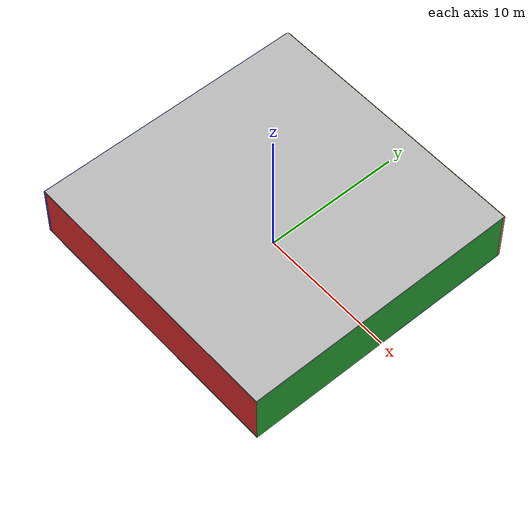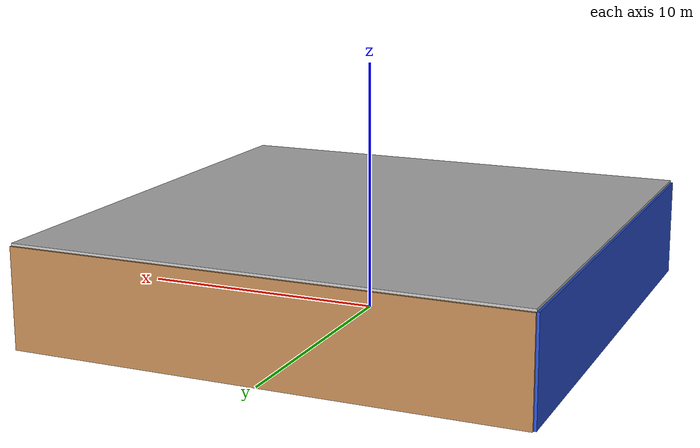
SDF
<sdf version="1.4">
 <world name="default">
  <physics type="ode">
   <max_step_size>0.001</max_step_size>
   <real_time_factor>1</real_time_factor>
   <real_time_update_rate>1000</real_time_update_rate>
   <gravity>0 0 -9.8</gravity>
  </physics>
  <scene><ambient>0.4 0.4 0.4 1</ambient><background>0.7 0.7 0.7 1</background><shadows>1</shadows></scene>
  <model name="Surrounding">
   <static>1</static>
   <link name="Ceiling">
    <collision name="Ceiling_Collision"><geometry><box><size>20 20 0.1</size></box></geometry></collision>
    <visual name="Ceiling_Visual">
     <geometry><box><size>20 20 0.1</size></box></geometry>
     <material>
      <script><uri>file://media/materials/scripts/gazebo.material</uri><name>Gazebo/Pioneer2Body</name></script>
     </material>
    </visual>
    <pose>0 0 4.05 0 0 0</pose>
   </link>
   <link name="Wall_South">
    <collision name="Wall_South_Collision">
     <geometry><box><size>20 0 4</size></box></geometry>
     <pose>0 0 2 0 -0 0</pose>
    </collision>
    <visual name="Wall_South_Visual">
     <pose>0 0 2 0 -0 0</pose>
     <geometry><box><size>20 0 4</size></box></geometry>
     <material>
      <script><uri>file://media/materials/scripts/gazebo.material</uri><name>Gazebo/RedBright</name></script>
     </material>
    </visual>
    <velocity_decay><linear>0</linear><angular>0</angular></velocity_decay>
    <pose>0 -10 0 0 -0 0</pose>
   </link>
   <link name="Wall_East">
    <collision name="Wall_21_Collision">
     <geometry><box><size>20 0 4</size></box></geometry>
     <pose>0 0 2 0 -0 0</pose>
    </collision>
    <visual name="Wall_21_Visual">
     <pose>0 0 2 0 -0 0</pose>
     <geometry><box><size>20 0 4</size></box></geometry>
     <material>
      <script><uri>file://media/materials/scripts/gazebo.material</uri><name>Gazebo/Green</name></script>
     </material>
    </visual>
    <velocity_decay><linear>0</linear><angular>0</angular></velocity_decay>
    <pose>10 0 0 0 -0 1.5708</pose>
   </link>
   <link name="Wall_North">
    <collision name="Wall_22_Collision">
     <geometry><box><size>20 0.2 4</size></box></geometry>
     <pose>0 0 2 0 -0 0</pose>
    </collision>
    <visual name="Wall_22_Visual">
     <pose>0 0 2 0 -0 0</pose>
     <geometry><box><size>20 0.2 4</size></box></geometry>
     <material>
      <script><uri>file://media/materials/scripts/gazebo.material</uri><name>Gazebo/WoodPallet</name></script>
     </material>
    </visual>
    <velocity_decay><linear>0</linear><angular>0</angular></velocity_decay>
    <pose>0 10 0 0 -0 0</pose>
   </link>
   <link name="Wall_West">
    <collision name="Wall_23_Collision">
     <geometry><box><size>20 0.2 4</size></box></geometry>
     <pose>0 0 2 0 -0 0</pose>
    </collision>
    <visual name="Wall_23_Visual">
     <pose>0 0 2 0 -0 0</pose>
     <geometry><box><size>20 0.2 4</size></box></geometry>
     <material>
      <script><uri>file://media/materials/scripts/gazebo.material</uri><name>Gazebo/BlueLaser</name></script>
     </material>
    </visual>
    <velocity_decay><linear>0</linear><angular>0</angular></velocity_decay>
    <pose>-10 0 0 0 0 -1.5708</pose>
   </link>
   <link name="Ground_link">
    <collision name="collision">
     <pose>0 0 .05 0 -0 0</pose>
     <geometry><box><size>20 20 0.1</size></box></geometry>
    </collision>
    <visual name="visual">
     <pose>0 0 .05 0 -0 0</pose>
     <geometry><box><size>20 20 0.1</size></box></geometry>
     <material>
      <script>
       <uri>file://media/materials/scripts/gazebo.material</uri>
       <name>Gazebo/TurquoiseGlowOutline</name>
      </script>
     </material>
    </visual>
   </link>
   <static>1</static>
  </model>
  <spherical_coordinates>
   <surface_model>EARTH_WGS84</surface_model>
   <latitude_deg>0</latitude_deg>
   <longitude_deg>0</longitude_deg>
   <elevation>0</elevation>
   <heading_deg>0</heading_deg>
  </spherical_coordinates>
  <light name="lightball_0" type="diffuse">
   <diffuse>0.8 0.8 0.8 1</diffuse>
   <specular>0.2 0.2 0.2 1</specular>
   <attenuation>
    <range>100</range>
    <constant>0.7</constant>
    <linear>0.01</linear>
    <quadratic>0.001</quadratic>
   </attenuation>
   <direction>-0.5 0.1 -0.9</direction>
   <pose>-0.0956262365114 -1.7970394675 1.54841006166 0 0 0</pose>
  </light>
  <light name="lightball_1" type="diffuse">
   <diffuse>0.8 0.8 0.8 1</diffuse>
   <specular>0.2 0.2 0.2 1</specular>
   <attenuation>
    <range>100</range>
    <constant>0.7</constant>
    <linear>0.01</linear>
    <quadratic>0.001</quadratic>
   </attenuation>
   <direction>-0.5 0.1 -0.9</direction>
   <pose>-4.76553464255 -3.57504472113 2.59565161551 0 0 0</pose>
  </light>
  <light name="lightball_2" type="diffuse">
   <diffuse>0.8 0.8 0.8 1</diffuse>
   <specular>0.2 0.2 0.2 1</specular>
   <attenuation>
    <range>100</range>
    <constant>0.7</constant>
    <linear>0.01</linear>
    <quadratic>0.001</quadratic>
   </attenuation>
   <direction>-0.5 0.1 -0.9</direction>
   <pose>-8.16170854077 -1.86752459311 3.45405687701 0 0 0</pose>
  </light>
  <light name="lightball_3" type="diffuse">
   <diffuse>0.8 0.8 0.8 1</diffuse>
   <specular>0.2 0.2 0.2 1</specular>
   <attenuation>
    <range>100</range>
    <constant>0.7</constant>
    <linear>0.01</linear>
    <quadratic>0.001</quadratic>
   </attenuation>
   <direction>-0.5 0.1 -0.9</direction>
   <pose>3.47586711085 8.47882272972 3.62999762373 0 0 0</pose>
  </light>
  <light name="lightball_4" type="diffuse">
   <diffuse>0.8 0.8 0.8 1</diffuse>
   <specular>0.2 0.2 0.2 1</specular>
   <attenuation>
    <range>100</range>
    <constant>0.7</constant>
    <linear>0.01</linear>
    <quadratic>0.001</quadratic>
   </attenuation>
   <direction>-0.5 0.1 -0.9</direction>
   <pose>6.01167844099 -0.843272354121 3.2570306344 0 0 0</pose>
  </light>
  <light name="lightball_5" type="diffuse">
   <diffuse>0.8 0.8 0.8 1</diffuse>
   <specular>0.2 0.2 0.2 1</specular>
   <attenuation>
    <range>100</range>
    <constant>0.7</constant>
    <linear>0.01</linear>
    <quadratic>0.001</quadratic>
   </attenuation>
   <direction>-0.5 0.1 -0.9</direction>
   <pose>6.49871362402 4.73651062232 2.18546060817 0 0 0</pose>
  </light>
  <include><uri>model://table</uri><pose>-8.58136387127 -5.65021126582 0 0 0 2.04916708019</pose></include>
  <include><uri>model://table</uri><pose>-1.05408967098 -4.90820303097 0 0 0 2.30376345336</pose></include>
  <include>
   <uri>model://construction_cone</uri>
   <pose>0.99643277513 -7.94279187954 0 0 0 1.78148478404</pose>
  </include>
  <include>
   <uri>model://robocup_3Dsim_goal</uri>
   <pose>7.46305404439 -1.85692239877 0 0 0 1.54534691984</pose>
  </include>
 </world>
</sdf>

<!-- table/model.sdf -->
<sdf version="1.5">
  <model name="table">
    <static>true</static>
    <link name="link">
      <collision name="surface">
        <pose>0 0 1.0 0 0 0</pose>
        <geometry>
          <box>
            <size>1.5 0.8 0.03</size>
          </box>
        </geometry>
        <surface>
          <friction>
            <ode>
              <mu>0.6</mu>
              <mu2>0.6</mu2>
            </ode>
          </friction>
        </surface>
      </collision>
      <visual name="visual1">
        <pose>0 0 1.0 0 0 0</pose>
        <geometry>
          <box>
            <size>1.5 0.8 0.03</size>
          </box>
        </geometry>
        <material>
          <script>
            <uri>model://media/materials/scripts/gazebo.material</uri>
            <name>Gazebo/Wood</name>
          </script>
        </material>
      </visual>
      <collision name="front_left_leg">
        <pose>0.68 0.38 0.5 0 0 0</pose>
        <geometry>
          <cylinder>
            <radius>0.02</radius>
            <length>1.0</length>
          </cylinder>
        </geometry>
      </collision>
      <visual name="front_left_leg">
        <pose>0.68 0.38 0.5 0 0 0</pose>
        <geometry>
          <cylinder>
            <radius>0.02</radius>
            <length>1.0</length>
          </cylinder>
        </geometry>
        <material>
          <script>
            <uri>model://media/materials/scripts/gazebo.material</uri>
            <name>Gazebo/Grey</name>
          </script>
        </material>
      </visual>
      <collision name="front_right_leg">
        <pose>0.68 -0.38 0.5 0 0 0</pose>
        <geometry>
          <cylinder>
            <radius>0.02</radius>
            <length>1.0</length>
          </cylinder>
        </geometry>
      </collision>
      <visual name="front_right_leg">
        <pose>0.68 -0.38 0.5 0 0 0</pose>
        <geometry>
          <cylinder>
            <radius>0.02</radius>
            <length>1.0</length>
          </cylinder>
        </geometry>
        <material>
          <script>
            <uri>model://media/materials/scripts/gazebo.material</uri>
            <name>Gazebo/Grey</name>
          </script>
        </material>
      </visual>
      <collision name="back_right_leg">
        <pose>-0.68 -0.38 0.5 0 0 0</pose>
        <geometry>
          <cylinder>
            <radius>0.02</radius>
            <length>1.0</length>
          </cylinder>
        </geometry>
      </collision>
      <visual name="back_right_leg">
        <pose>-0.68 -0.38 0.5 0 0 0</pose>
        <geometry>
          <cylinder>
            <radius>0.02</radius>
            <length>1.0</length>
          </cylinder>
        </geometry>
        <material>
          <script>
            <uri>model://media/materials/scripts/gazebo.material</uri>
            <name>Gazebo/Grey</name>
          </script>
        </material>
      </visual>
      <collision name="back_left_leg">
        <pose>-0.68 0.38 0.5 0 0 0</pose>
        <geometry>
          <cylinder>
            <radius>0.02</radius>
            <length>1.0</length>
          </cylinder>
        </geometry>
      </collision>
      <visual name="back_left_leg">
        <pose>-0.68 0.38 0.5 0 0 0</pose>
        <geometry>
          <cylinder>
            <radius>0.02</radius>
            <length>1.0</length>
          </cylinder>
        </geometry>
        <material>
          <script>
            <uri>model://media/materials/scripts/gazebo.material</uri>
            <name>Gazebo/Grey</name>
          </script>
        </material>
      </visual>
    </link>
  </model>
</sdf>

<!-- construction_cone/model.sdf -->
<sdf version="1.5">
  <model name="Construction Cone">
    <link name="link">
      <collision name="collision">
        <geometry>
          <mesh>
            <scale>10 10 10</scale>
            <uri>file://isr-testbed/construction_cone/meshes/construction_cone.dae</uri>
          </mesh>
        </geometry>
      </collision>
      <visual name="visual">
        <geometry>
          <mesh>
            <scale>10 10 10</scale>
            <uri>file://isr-testbed/construction_cone/meshes/construction_cone.dae</uri>
          </mesh>
        </geometry>
      </visual>
    </link>
  </model>
</sdf>

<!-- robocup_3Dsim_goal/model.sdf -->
<sdf version="1.5">
  <model name="robocup_3d_goal">
    <static>true</static>
    <link name="left_post">
      <pose>0 1.05 0.45 0 0 0</pose>
      <collision name="collision">
        <geometry>
          <cylinder>
            <radius>0.05</radius>
            <length>0.9</length>
          </cylinder>
        </geometry>
      </collision>
      <visual name="visual">
        <geometry>
          <cylinder>
            <radius>0.05</radius>
            <length>0.9</length>
          </cylinder>
        </geometry>
        <material>
          <script>
            <uri>file://media/materials/scripts/gazebo.material</uri>
            <name>Gazebo/ZincYellow</name>
          </script>
        </material>
      </visual>
    </link>
    <link name="left_support_horiz_lower">
      <pose>0.30 1.05 0.01 0 0 0</pose>
      <collision name="collision">
        <geometry>
          <box>
            <size>0.50 0.02 0.02</size>
          </box>
        </geometry>
      </collision>
      <visual name="visual">
        <geometry>
          <box>
            <size>0.50 0.02 0.02</size>
          </box>
        </geometry>
        <material>
          <script>
            <uri>file://media/materials/scripts/gazebo.material</uri>
            <name>Gazebo/White</name>
          </script>
        </material>
      </visual>
    </link>
    <link name="left_support_horiz_upper">
      <pose>0.30 1.05 0.79 0 0 0</pose>
      <collision name="collision">
        <geometry>
          <box>
            <size>0.50 0.02 0.02</size>
          </box>
        </geometry>
      </collision>
      <visual name="visual">
        <geometry>
          <box>
            <size>0.50 0.02 0.02</size>
          </box>
        </geometry>
        <material>
          <script>
            <uri>file://media/materials/scripts/gazebo.material</uri>
            <name>Gazebo/White</name>
          </script>
        </material>
      </visual>
    </link>
    <link name="left_support_vertical">
      <pose>0.56 1.05 0.4 0 1.5708 0</pose>
      <collision name="collision">
        <geometry>
          <box>
            <size>0.80 0.02 0.02</size>
          </box>
        </geometry>
      </collision>
      <visual name="visual">
        <geometry>
          <box>
            <size>0.80 0.02 0.02</size>
          </box>
        </geometry>
        <material>
          <script>
            <uri>file://media/materials/scripts/gazebo.material</uri>
            <name>Gazebo/White</name>
          </script>
        </material>
      </visual>
    </link>
    <link name="right_support_horiz_lower">
      <pose>0.30 -1.05 0.01 0 0 0</pose>
      <collision name="collision">
        <geometry>
          <box>
            <size>0.50 0.02 0.02</size>
          </box>
        </geometry>
      </collision>
      <visual name="visual">
        <geometry>
          <box>
            <size>0.50 0.02 0.02</size>
          </box>
        </geometry>
        <material>
          <script>
            <uri>file://media/materials/scripts/gazebo.material</uri>
            <name>Gazebo/White</name>
          </script>
        </material>
      </visual>
    </link>
    <link name="right_support_horiz_upper">
      <pose>0.30 -1.05 0.79 0 0 0</pose>
      <collision name="collision">
        <geometry>
          <box>
            <size>0.50 0.02 0.02</size>
          </box>
        </geometry>
      </collision>
      <visual name="visual">
        <geometry>
          <box>
            <size>0.50 0.02 0.02</size>
          </box>
        </geometry>
        <material>
          <script>
            <uri>file://media/materials/scripts/gazebo.material</uri>
            <name>Gazebo/White</name>
          </script>
        </material>
      </visual>
    </link>
    <link name="right_support_vertical">
      <pose>0.56 -1.05 0.4 0 1.5708 0</pose>
      <collision name="collision">
        <geometry>
          <box>
            <size>0.80 0.02 0.02</size>
          </box>
        </geometry>
      </collision>
      <visual name="visual">
        <geometry>
          <box>
            <size>0.80 0.02 0.02</size>
          </box>
        </geometry>
        <material>
          <script>
            <uri>file://media/materials/scripts/gazebo.material</uri>
            <name>Gazebo/White</name>
          </script>
        </material>
      </visual>
    </link>
    <link name="center_support_horiz_lower">
      <pose>0.56 0 0.01 0 1.5708 0</pose>
      <collision name="collision">
        <geometry>
          <box>
            <size>0.02 2.08 0.02</size>
          </box>
        </geometry>
      </collision>
      <visual name="visual">
        <geometry>
          <box>
            <size>0.02 2.08 0.02</size>
          </box>
        </geometry>
        <material>
          <script>
            <uri>file://media/materials/scripts/gazebo.material</uri>
            <name>Gazebo/White</name>
          </script>
        </material>
      </visual>
    </link>
    <link name="center_support_horiz_upper">
      <pose>0.56 0 0.79 0 1.5708 0</pose>
      <collision name="collision">
        <geometry>
          <box>
            <size>0.02 2.08 0.02</size>
          </box>
        </geometry>
      </collision>
      <visual name="visual">
        <geometry>
          <box>
            <size>0.02 2.08 0.02</size>
          </box>
        </geometry>
        <material>
          <script>
            <uri>file://media/materials/scripts/gazebo.material</uri>
            <name>Gazebo/White</name>
          </script>
        </material>
      </visual>
    </link>
    <link name="right_post">
      <pose>0 -1.05 0.45 0 0 0</pose>
      <collision name="collision">
        <geometry>
          <cylinder>
            <radius>0.05</radius>
            <length>0.9</length>
          </cylinder>
        </geometry>
      </collision>
      <visual name="visual">
        <geometry>
          <cylinder>
            <radius>0.05</radius>
            <length>0.9</length>
          </cylinder>
        </geometry>
        <material>
          <script>
            <uri>file://media/materials/scripts/gazebo.material</uri>
            <name>Gazebo/ZincYellow</name>
          </script>
        </material>
      </visual>
    </link>
    <link name="crossbar">
      <pose>0 0 0.85 1.57 1.57 0</pose>
      <collision name="collision">
        <geometry>
          <cylinder>
            <radius>0.05</radius>
            <length>2.0</length>
          </cylinder>
        </geometry>
      </collision>
      <visual name="visual">
        <geometry>
          <cylinder>
            <radius>0.05</radius>
            <length>2.0</length>
          </cylinder>
        </geometry>
        <material>
          <script>
            <uri>file://media/materials/scripts/gazebo.material</uri>
            <name>Gazebo/ZincYellow</name>
          </script>
        </material>
      </visual>
    </link>
    <link name="center_net">
      <pose>0.56 0 0.40 0 0 0</pose>
      <collision name="collision">
        <geometry>
          <box>
            <size>0.01 2.1 0.80</size>
          </box>
        </geometry>
      </collision>
      <visual name="visual">
        <geometry>
          <box>
            <size>0.01 2.1 0.80</size>
          </box>
        </geometry>
        <material>
          <script>
            <uri>model://../model_source/models/robocup09_spl_field/materials/scripts/</uri>
            <uri>model://../model_source/models/robocup09_spl_field/materials/textures/</uri>
            <name>RoboCup/Net</name>
          </script>
        </material>
      </visual>
    </link>
    <link name="left_net">
      <pose>0.30 1.05 0.40 0 0 0</pose>
      <collision name="collision">
        <geometry>
          <box>
            <size>0.50 0.01 0.76</size>
          </box>
        </geometry>
      </collision>
      <visual name="visual">
        <geometry>
          <box>
            <size>0.50 0.01 0.76</size>
          </box>
        </geometry>
        <material>
          <script>
            <uri>model://../model_source/models/robocup09_spl_field/materials/scripts/</uri>
            <uri>model://../model_source/models/robocup09_spl_field/materials/textures/</uri>
            <name>RoboCup/Net</name>
          </script>
        </material>
      </visual>
    </link>
    <link name="right_net">
      <pose>0.30 -1.05 0.40 0 0 0</pose>
      <collision name="collision">
        <geometry>
          <box>
            <size>0.50 0.01 0.76</size>
          </box>
        </geometry>
      </collision>
      <visual name="visual">
        <geometry>
          <box>
            <size>0.50 0.01 0.76</size>
          </box>
        </geometry>
        <material>
          <script>
            <uri>model://../model_source/models/robocup09_spl_field/materials/scripts/</uri>
            <uri>model://../model_source/models/robocup09_spl_field/materials/textures/</uri>
            <name>RoboCup/Net</name>
          </script>
        </material>
      </visual>
    </link>
  </model>
</sdf>
